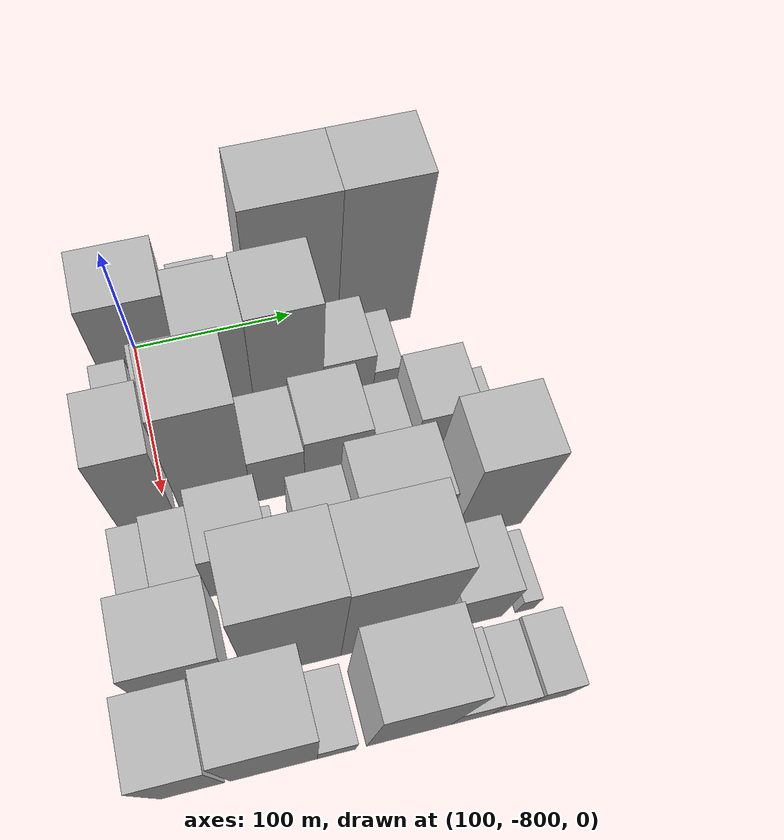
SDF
<sdf version="1.6">
 <world name="default">
  <model name="building_1">
   <static>1</static>
   <pose>100.0000 -797.8358 0 0.000000 0.000000 0.000000</pose>
   <link name="link">
    <pose>0 0 40.50 0 0 0</pose>
    <collision name="collision"><geometry><box><size>40.0000 48.3283 81.0000</size></box></geometry></collision>
    <visual name="visual">
     <cast_shadows>0</cast_shadows>
     <geometry><box><size>40.0000 48.3283 81.0000</size></box></geometry>
     <material>
      <script>
       <uri>model://HANNAS_wall/materials/scripts</uri>
       <uri>model://HANNAS_wall/materials/textures</uri>
       <name>vrc/HANNAS_wall</name>
      </script>
     </material>
    </visual>
   </link>
  </model>
  <model name="building_2">
   <static>1</static>
   <pose>100.0000 -755.2595 0 0.000000 0.000000 0.000000</pose>
   <link name="link">
    <pose>0 0 25.50 0 0 0</pose>
    <collision name="collision"><geometry><box><size>40.0000 28.8243 51.0000</size></box></geometry></collision>
    <visual name="visual">
     <cast_shadows>0</cast_shadows>
     <geometry><box><size>40.0000 28.8243 51.0000</size></box></geometry>
     <material>
      <script>
       <uri>model://HANNAS_wall/materials/scripts</uri>
       <uri>model://HANNAS_wall/materials/textures</uri>
       <name>vrc/HANNAS_wall</name>
      </script>
     </material>
    </visual>
   </link>
  </model>
  <model name="building_3">
   <static>1</static>
   <pose>100.0000 -734.4931 0 0.000000 0.000000 0.000000</pose>
   <link name="link">
    <pose>0 0 13.50 0 0 0</pose>
    <collision name="collision"><geometry><box><size>40.0000 12.7086 27.0000</size></box></geometry></collision>
    <visual name="visual">
     <cast_shadows>0</cast_shadows>
     <geometry><box><size>40.0000 12.7086 27.0000</size></box></geometry>
     <material>
      <script>
       <uri>model://HANNAS_wall/materials/scripts</uri>
       <uri>model://HANNAS_wall/materials/textures</uri>
       <name>vrc/HANNAS_wall</name>
      </script>
     </material>
    </visual>
   </link>
  </model>
  <model name="building_4">
   <static>1</static>
   <pose>100.0000 -700.9512 0 0.000000 0.000000 0.000000</pose>
   <link name="link">
    <pose>0 0 69.00 0 0 0</pose>
    <collision name="collision"><geometry><box><size>40.0000 54.3752 138.0000</size></box></geometry></collision>
    <visual name="visual">
     <cast_shadows>0</cast_shadows>
     <geometry><box><size>40.0000 54.3752 138.0000</size></box></geometry>
     <material>
      <script>
       <uri>model://HANNAS_wall/materials/scripts</uri>
       <uri>model://HANNAS_wall/materials/textures</uri>
       <name>vrc/HANNAS_wall</name>
      </script>
     </material>
    </visual>
   </link>
  </model>
  <model name="building_5">
   <static>1</static>
   <pose>100.0000 -649.9004 0 0.000000 0.000000 0.000000</pose>
   <link name="link">
    <pose>0 0 69.00 0 0 0</pose>
    <collision name="collision"><geometry><box><size>40.0000 47.7264 138.0000</size></box></geometry></collision>
    <visual name="visual">
     <cast_shadows>0</cast_shadows>
     <geometry><box><size>40.0000 47.7264 138.0000</size></box></geometry>
     <material>
      <script>
       <uri>model://HANNAS_wall/materials/scripts</uri>
       <uri>model://HANNAS_wall/materials/textures</uri>
       <name>vrc/HANNAS_wall</name>
      </script>
     </material>
    </visual>
   </link>
  </model>
  <model name="building_44">
   <static>1</static>
   <pose>149.0000 -814.3476 0 0.000000 0.000000 0.000000</pose>
   <link name="link">
    <pose>0 0 19.50 0 0 0</pose>
    <collision name="collision"><geometry><box><size>40.0000 21.3049 39.0000</size></box></geometry></collision>
    <visual name="visual">
     <cast_shadows>0</cast_shadows>
     <geometry><box><size>40.0000 21.3049 39.0000</size></box></geometry>
     <material>
      <script>
       <uri>model://HANNAS_wall/materials/scripts</uri>
       <uri>model://HANNAS_wall/materials/textures</uri>
       <name>vrc/HANNAS_wall</name>
      </script>
     </material>
    </visual>
   </link>
  </model>
  <model name="building_45">
   <static>1</static>
   <pose>149.0000 -786.1630 0 0.000000 0.000000 0.000000</pose>
   <link name="link">
    <pose>0 0 27.00 0 0 0</pose>
    <collision name="collision"><geometry><box><size>40.0000 29.0642 54.0000</size></box></geometry></collision>
    <visual name="visual">
     <cast_shadows>0</cast_shadows>
     <geometry><box><size>40.0000 29.0642 54.0000</size></box></geometry>
     <material>
      <script>
       <uri>model://HANNAS_wall/materials/scripts</uri>
       <uri>model://HANNAS_wall/materials/textures</uri>
       <name>vrc/HANNAS_wall</name>
      </script>
     </material>
    </visual>
   </link>
  </model>
  <model name="building_46">
   <static>1</static>
   <pose>149.0000 -753.9838 0 0.000000 0.000000 0.000000</pose>
   <link name="link">
    <pose>0 0 58.50 0 0 0</pose>
    <collision name="collision"><geometry><box><size>40.0000 35.2943 117.0000</size></box></geometry></collision>
    <visual name="visual">
     <cast_shadows>0</cast_shadows>
     <geometry><box><size>40.0000 35.2943 117.0000</size></box></geometry>
     <material>
      <script>
       <uri>model://HANNAS_wall/materials/scripts</uri>
       <uri>model://HANNAS_wall/materials/textures</uri>
       <name>vrc/HANNAS_wall</name>
      </script>
     </material>
    </visual>
   </link>
  </model>
  <model name="building_47">
   <static>1</static>
   <pose>149.0000 -715.8623 0 0.000000 0.000000 0.000000</pose>
   <link name="link">
    <pose>0 0 60.00 0 0 0</pose>
    <collision name="collision"><geometry><box><size>40.0000 40.9487 120.0000</size></box></geometry></collision>
    <visual name="visual">
     <cast_shadows>0</cast_shadows>
     <geometry><box><size>40.0000 40.9487 120.0000</size></box></geometry>
     <material>
      <script>
       <uri>model://HANNAS_wall/materials/scripts</uri>
       <uri>model://HANNAS_wall/materials/textures</uri>
       <name>vrc/HANNAS_wall</name>
      </script>
     </material>
    </visual>
   </link>
  </model>
  <model name="building_48">
   <static>1</static>
   <pose>149.0000 -679.9617 0 0.000000 0.000000 0.000000</pose>
   <link name="link">
    <pose>0 0 27.00 0 0 0</pose>
    <collision name="collision"><geometry><box><size>40.0000 30.8525 54.0000</size></box></geometry></collision>
    <visual name="visual">
     <cast_shadows>0</cast_shadows>
     <geometry><box><size>40.0000 30.8525 54.0000</size></box></geometry>
     <material>
      <script>
       <uri>model://HANNAS_wall/materials/scripts</uri>
       <uri>model://HANNAS_wall/materials/textures</uri>
       <name>vrc/HANNAS_wall</name>
      </script>
     </material>
    </visual>
   </link>
  </model>
  <model name="building_49">
   <static>1</static>
   <pose>149.0000 -655.8019 0 0.000000 0.000000 0.000000</pose>
   <link name="link">
    <pose>0 0 16.50 0 0 0</pose>
    <collision name="collision"><geometry><box><size>40.0000 17.4672 33.0000</size></box></geometry></collision>
    <visual name="visual">
     <cast_shadows>0</cast_shadows>
     <geometry><box><size>40.0000 17.4672 33.0000</size></box></geometry>
     <material>
      <script>
       <uri>model://HANNAS_wall/materials/scripts</uri>
       <uri>model://HANNAS_wall/materials/textures</uri>
       <name>vrc/HANNAS_wall</name>
      </script>
     </material>
    </visual>
   </link>
  </model>
  <model name="building_90">
   <static>1</static>
   <pose>198.0000 -810.6737 0 0.000000 0.000000 0.000000</pose>
   <link name="link">
    <pose>0 0 51.00 0 0 0</pose>
    <collision name="collision"><geometry><box><size>40.0000 32.6526 102.0000</size></box></geometry></collision>
    <visual name="visual">
     <cast_shadows>0</cast_shadows>
     <geometry><box><size>40.0000 32.6526 102.0000</size></box></geometry>
     <material>
      <script>
       <uri>model://HANNAS_wall/materials/scripts</uri>
       <uri>model://HANNAS_wall/materials/textures</uri>
       <name>vrc/HANNAS_wall</name>
      </script>
     </material>
    </visual>
   </link>
  </model>
  <model name="building_91">
   <static>1</static>
   <pose>198.0000 -769.9344 0 0.000000 0.000000 0.000000</pose>
   <link name="link">
    <pose>0 0 67.50 0 0 0</pose>
    <collision name="collision"><geometry><box><size>40.0000 40.8260 135.0000</size></box></geometry></collision>
    <visual name="visual">
     <cast_shadows>0</cast_shadows>
     <geometry><box><size>40.0000 40.8260 135.0000</size></box></geometry>
     <material>
      <script>
       <uri>model://HANNAS_wall/materials/scripts</uri>
       <uri>model://HANNAS_wall/materials/textures</uri>
       <name>vrc/HANNAS_wall</name>
      </script>
     </material>
    </visual>
   </link>
  </model>
  <model name="building_92">
   <static>1</static>
   <pose>198.0000 -733.8864 0 0.000000 0.000000 0.000000</pose>
   <link name="link">
    <pose>0 0 30.00 0 0 0</pose>
    <collision name="collision"><geometry><box><size>40.0000 31.2701 60.0000</size></box></geometry></collision>
    <visual name="visual">
     <cast_shadows>0</cast_shadows>
     <geometry><box><size>40.0000 31.2701 60.0000</size></box></geometry>
     <material>
      <script>
       <uri>model://HANNAS_wall/materials/scripts</uri>
       <uri>model://HANNAS_wall/materials/textures</uri>
       <name>vrc/HANNAS_wall</name>
      </script>
     </material>
    </visual>
   </link>
  </model>
  <model name="building_93">
   <static>1</static>
   <pose>198.0000 -699.2500 0 0.000000 0.000000 0.000000</pose>
   <link name="link">
    <pose>0 0 34.50 0 0 0</pose>
    <collision name="collision"><geometry><box><size>40.0000 38.0027 69.0000</size></box></geometry></collision>
    <visual name="visual">
     <cast_shadows>0</cast_shadows>
     <geometry><box><size>40.0000 38.0027 69.0000</size></box></geometry>
     <material>
      <script>
       <uri>model://HANNAS_wall/materials/scripts</uri>
       <uri>model://HANNAS_wall/materials/textures</uri>
       <name>vrc/HANNAS_wall</name>
      </script>
     </material>
    </visual>
   </link>
  </model>
  <model name="building_94">
   <static>1</static>
   <pose>198.0000 -664.7295 0 0.000000 0.000000 0.000000</pose>
   <link name="link">
    <pose>0 0 19.50 0 0 0</pose>
    <collision name="collision"><geometry><box><size>40.0000 21.0384 39.0000</size></box></geometry></collision>
    <visual name="visual">
     <cast_shadows>0</cast_shadows>
     <geometry><box><size>40.0000 21.0384 39.0000</size></box></geometry>
     <material>
      <script>
       <uri>model://HANNAS_wall/materials/scripts</uri>
       <uri>model://HANNAS_wall/materials/textures</uri>
       <name>vrc/HANNAS_wall</name>
      </script>
     </material>
    </visual>
   </link>
  </model>
  <model name="building_95">
   <static>1</static>
   <pose>198.0000 -637.0388 0 0.000000 0.000000 0.000000</pose>
   <link name="link">
    <pose>0 0 33.00 0 0 0</pose>
    <collision name="collision"><geometry><box><size>40.0000 34.3429 66.0000</size></box></geometry></collision>
    <visual name="visual">
     <cast_shadows>0</cast_shadows>
     <geometry><box><size>40.0000 34.3429 66.0000</size></box></geometry>
     <material>
      <script>
       <uri>model://HANNAS_wall/materials/scripts</uri>
       <uri>model://HANNAS_wall/materials/textures</uri>
       <name>vrc/HANNAS_wall</name>
      </script>
     </material>
    </visual>
   </link>
  </model>
  <model name="building_96">
   <static>1</static>
   <pose>198.0000 -611.3137 0 0.000000 0.000000 0.000000</pose>
   <link name="link">
    <pose>0 0 15.00 0 0 0</pose>
    <collision name="collision"><geometry><box><size>40.0000 17.1075 30.0000</size></box></geometry></collision>
    <visual name="visual">
     <cast_shadows>0</cast_shadows>
     <geometry><box><size>40.0000 17.1075 30.0000</size></box></geometry>
     <material>
      <script>
       <uri>model://HANNAS_wall/materials/scripts</uri>
       <uri>model://HANNAS_wall/materials/textures</uri>
       <name>vrc/HANNAS_wall</name>
      </script>
     </material>
    </visual>
   </link>
  </model>
  <model name="building_140">
   <static>1</static>
   <pose>247.0000 -820.7951 0 0.000000 0.000000 0.000000</pose>
   <link name="link">
    <pose>0 0 18.00 0 0 0</pose>
    <collision name="collision"><geometry><box><size>40.0000 18.4097 36.0000</size></box></geometry></collision>
    <visual name="visual">
     <cast_shadows>0</cast_shadows>
     <geometry><box><size>40.0000 18.4097 36.0000</size></box></geometry>
     <material>
      <script>
       <uri>model://HANNAS_wall/materials/scripts</uri>
       <uri>model://HANNAS_wall/materials/textures</uri>
       <name>vrc/HANNAS_wall</name>
      </script>
     </material>
    </visual>
   </link>
  </model>
  <model name="building_141">
   <static>1</static>
   <pose>247.0000 -798.0958 0 0.000000 0.000000 0.000000</pose>
   <link name="link">
    <pose>0 0 22.50 0 0 0</pose>
    <collision name="collision"><geometry><box><size>40.0000 26.9890 45.0000</size></box></geometry></collision>
    <visual name="visual">
     <cast_shadows>0</cast_shadows>
     <geometry><box><size>40.0000 26.9890 45.0000</size></box></geometry>
     <material>
      <script>
       <uri>model://HANNAS_wall/materials/scripts</uri>
       <uri>model://HANNAS_wall/materials/textures</uri>
       <name>vrc/HANNAS_wall</name>
      </script>
     </material>
    </visual>
   </link>
  </model>
  <model name="building_142">
   <static>1</static>
   <pose>247.0000 -766.0405 0 0.000000 0.000000 0.000000</pose>
   <link name="link">
    <pose>0 0 34.50 0 0 0</pose>
    <collision name="collision"><geometry><box><size>40.0000 37.1214 69.0000</size></box></geometry></collision>
    <visual name="visual">
     <cast_shadows>0</cast_shadows>
     <geometry><box><size>40.0000 37.1214 69.0000</size></box></geometry>
     <material>
      <script>
       <uri>model://HANNAS_wall/materials/scripts</uri>
       <uri>model://HANNAS_wall/materials/textures</uri>
       <name>vrc/HANNAS_wall</name>
      </script>
     </material>
    </visual>
   </link>
  </model>
  <model name="building_143">
   <static>1</static>
   <pose>247.0000 -744.4056 0 0.000000 0.000000 0.000000</pose>
   <link name="link">
    <pose>0 0 7.50 0 0 0</pose>
    <collision name="collision"><geometry><box><size>40.0000 6.1484 15.0000</size></box></geometry></collision>
    <visual name="visual">
     <cast_shadows>0</cast_shadows>
     <geometry><box><size>40.0000 6.1484 15.0000</size></box></geometry>
     <material>
      <script>
       <uri>model://HANNAS_wall/materials/scripts</uri>
       <uri>model://HANNAS_wall/materials/textures</uri>
       <name>vrc/HANNAS_wall</name>
      </script>
     </material>
    </visual>
   </link>
  </model>
  <model name="building_144">
   <static>1</static>
   <pose>247.0000 -715.7449 0 0.000000 0.000000 0.000000</pose>
   <link name="link">
    <pose>0 0 27.00 0 0 0</pose>
    <collision name="collision"><geometry><box><size>40.0000 31.1729 54.0000</size></box></geometry></collision>
    <visual name="visual">
     <cast_shadows>0</cast_shadows>
     <geometry><box><size>40.0000 31.1729 54.0000</size></box></geometry>
     <material>
      <script>
       <uri>model://HANNAS_wall/materials/scripts</uri>
       <uri>model://HANNAS_wall/materials/textures</uri>
       <name>vrc/HANNAS_wall</name>
      </script>
     </material>
    </visual>
   </link>
  </model>
  <model name="building_145">
   <static>1</static>
   <pose>247.0000 -675.9454 0 0.000000 0.000000 0.000000</pose>
   <link name="link">
    <pose>0 0 42.00 0 0 0</pose>
    <collision name="collision"><geometry><box><size>40.0000 48.4261 84.0000</size></box></geometry></collision>
    <visual name="visual">
     <cast_shadows>0</cast_shadows>
     <geometry><box><size>40.0000 48.4261 84.0000</size></box></geometry>
     <material>
      <script>
       <uri>model://HANNAS_wall/materials/scripts</uri>
       <uri>model://HANNAS_wall/materials/textures</uri>
       <name>vrc/HANNAS_wall</name>
      </script>
     </material>
    </visual>
   </link>
  </model>
  <model name="building_146">
   <static>1</static>
   <pose>247.0000 -622.5929 0 0.000000 0.000000 0.000000</pose>
   <link name="link">
    <pose>0 0 54.00 0 0 0</pose>
    <collision name="collision"><geometry><box><size>40.0000 42.2787 108.0000</size></box></geometry></collision>
    <visual name="visual">
     <cast_shadows>0</cast_shadows>
     <geometry><box><size>40.0000 42.2787 108.0000</size></box></geometry>
     <material>
      <script>
       <uri>model://HANNAS_wall/materials/scripts</uri>
       <uri>model://HANNAS_wall/materials/textures</uri>
       <name>vrc/HANNAS_wall</name>
      </script>
     </material>
    </visual>
   </link>
  </model>
  <model name="building_192">
   <static>1</static>
   <pose>296.0000 -806.2246 0 0.000000 0.000000 0.000000</pose>
   <link name="link">
    <pose>0 0 40.50 0 0 0</pose>
    <collision name="collision"><geometry><box><size>40.0000 47.5508 81.0000</size></box></geometry></collision>
    <visual name="visual">
     <cast_shadows>0</cast_shadows>
     <geometry><box><size>40.0000 47.5508 81.0000</size></box></geometry>
     <material>
      <script>
       <uri>model://HANNAS_wall/materials/scripts</uri>
       <uri>model://HANNAS_wall/materials/textures</uri>
       <name>vrc/HANNAS_wall</name>
      </script>
     </material>
    </visual>
   </link>
  </model>
  <model name="building_193">
   <static>1</static>
   <pose>296.0000 -747.5512 0 0.000000 0.000000 0.000000</pose>
   <link name="link">
    <pose>0 0 72.00 0 0 0</pose>
    <collision name="collision"><geometry><box><size>40.0000 51.7960 144.0000</size></box></geometry></collision>
    <visual name="visual">
     <cast_shadows>0</cast_shadows>
     <geometry><box><size>40.0000 51.7960 144.0000</size></box></geometry>
     <material>
      <script>
       <uri>model://HANNAS_wall/materials/scripts</uri>
       <uri>model://HANNAS_wall/materials/textures</uri>
       <name>vrc/HANNAS_wall</name>
      </script>
     </material>
    </visual>
   </link>
  </model>
  <model name="building_194">
   <static>1</static>
   <pose>296.0000 -694.8485 0 0.000000 0.000000 0.000000</pose>
   <link name="link">
    <pose>0 0 70.50 0 0 0</pose>
    <collision name="collision"><geometry><box><size>40.0000 53.6096 141.0000</size></box></geometry></collision>
    <visual name="visual">
     <cast_shadows>0</cast_shadows>
     <geometry><box><size>40.0000 53.6096 141.0000</size></box></geometry>
     <material>
      <script>
       <uri>model://HANNAS_wall/materials/scripts</uri>
       <uri>model://HANNAS_wall/materials/textures</uri>
       <name>vrc/HANNAS_wall</name>
      </script>
     </material>
    </visual>
   </link>
  </model>
  <model name="building_195">
   <static>1</static>
   <pose>296.0000 -645.6796 0 0.000000 0.000000 0.000000</pose>
   <link name="link">
    <pose>0 0 31.50 0 0 0</pose>
    <collision name="collision"><geometry><box><size>40.0000 32.7281 63.0000</size></box></geometry></collision>
    <visual name="visual">
     <cast_shadows>0</cast_shadows>
     <geometry><box><size>40.0000 32.7281 63.0000</size></box></geometry>
     <material>
      <script>
       <uri>model://HANNAS_wall/materials/scripts</uri>
       <uri>model://HANNAS_wall/materials/textures</uri>
       <name>vrc/HANNAS_wall</name>
      </script>
     </material>
    </visual>
   </link>
  </model>
  <model name="building_196">
   <static>1</static>
   <pose>296.0000 -615.9681 0 0.000000 0.000000 0.000000</pose>
   <link name="link">
    <pose>0 0 12.00 0 0 0</pose>
    <collision name="collision"><geometry><box><size>40.0000 10.6949 24.0000</size></box></geometry></collision>
    <visual name="visual">
     <cast_shadows>0</cast_shadows>
     <geometry><box><size>40.0000 10.6949 24.0000</size></box></geometry>
     <material>
      <script>
       <uri>model://HANNAS_wall/materials/scripts</uri>
       <uri>model://HANNAS_wall/materials/textures</uri>
       <name>vrc/HANNAS_wall</name>
      </script>
     </material>
    </visual>
   </link>
  </model>
  <model name="building_234">
   <static>1</static>
   <pose>345.0000 -813.1342 0 0.000000 0.000000 0.000000</pose>
   <link name="link">
    <pose>0 0 51.00 0 0 0</pose>
    <collision name="collision"><geometry><box><size>40.0000 33.7317 102.0000</size></box></geometry></collision>
    <visual name="visual">
     <cast_shadows>0</cast_shadows>
     <geometry><box><size>40.0000 33.7317 102.0000</size></box></geometry>
     <material>
      <script>
       <uri>model://HANNAS_wall/materials/scripts</uri>
       <uri>model://HANNAS_wall/materials/textures</uri>
       <name>vrc/HANNAS_wall</name>
      </script>
     </material>
    </visual>
   </link>
  </model>
  <model name="building_235">
   <static>1</static>
   <pose>345.0000 -770.0024 0 0.000000 0.000000 0.000000</pose>
   <link name="link">
    <pose>0 0 61.50 0 0 0</pose>
    <collision name="collision"><geometry><box><size>40.0000 46.5319 123.0000</size></box></geometry></collision>
    <visual name="visual">
     <cast_shadows>0</cast_shadows>
     <geometry><box><size>40.0000 46.5319 123.0000</size></box></geometry>
     <material>
      <script>
       <uri>model://HANNAS_wall/materials/scripts</uri>
       <uri>model://HANNAS_wall/materials/textures</uri>
       <name>vrc/HANNAS_wall</name>
      </script>
     </material>
    </visual>
   </link>
  </model>
  <model name="building_236">
   <static>1</static>
   <pose>345.0000 -736.4166 0 0.000000 0.000000 0.000000</pose>
   <link name="link">
    <pose>0 0 18.00 0 0 0</pose>
    <collision name="collision"><geometry><box><size>40.0000 20.6397 36.0000</size></box></geometry></collision>
    <visual name="visual">
     <cast_shadows>0</cast_shadows>
     <geometry><box><size>40.0000 20.6397 36.0000</size></box></geometry>
     <material>
      <script>
       <uri>model://HANNAS_wall/materials/scripts</uri>
       <uri>model://HANNAS_wall/materials/textures</uri>
       <name>vrc/HANNAS_wall</name>
      </script>
     </material>
    </visual>
   </link>
  </model>
  <model name="building_237">
   <static>1</static>
   <pose>345.0000 -696.9354 0 0.000000 0.000000 0.000000</pose>
   <link name="link">
    <pose>0 0 61.50 0 0 0</pose>
    <collision name="collision"><geometry><box><size>40.0000 46.3228 123.0000</size></box></geometry></collision>
    <visual name="visual">
     <cast_shadows>0</cast_shadows>
     <geometry><box><size>40.0000 46.3228 123.0000</size></box></geometry>
     <material>
      <script>
       <uri>model://HANNAS_wall/materials/scripts</uri>
       <uri>model://HANNAS_wall/materials/textures</uri>
       <name>vrc/HANNAS_wall</name>
      </script>
     </material>
    </visual>
   </link>
  </model>
  <model name="building_238">
   <static>1</static>
   <pose>345.0000 -662.4675 0 0.000000 0.000000 0.000000</pose>
   <link name="link">
    <pose>0 0 21.00 0 0 0</pose>
    <collision name="collision"><geometry><box><size>40.0000 22.6129 42.0000</size></box></geometry></collision>
    <visual name="visual">
     <cast_shadows>0</cast_shadows>
     <geometry><box><size>40.0000 22.6129 42.0000</size></box></geometry>
     <material>
      <script>
       <uri>model://HANNAS_wall/materials/scripts</uri>
       <uri>model://HANNAS_wall/materials/textures</uri>
       <name>vrc/HANNAS_wall</name>
      </script>
     </material>
    </visual>
   </link>
  </model>
  <model name="building_239">
   <static>1</static>
   <pose>345.0000 -640.7263 0 0.000000 0.000000 0.000000</pose>
   <link name="link">
    <pose>0 0 18.00 0 0 0</pose>
    <collision name="collision"><geometry><box><size>40.0000 20.8695 36.0000</size></box></geometry></collision>
    <visual name="visual">
     <cast_shadows>0</cast_shadows>
     <geometry><box><size>40.0000 20.8695 36.0000</size></box></geometry>
     <material>
      <script>
       <uri>model://HANNAS_wall/materials/scripts</uri>
       <uri>model://HANNAS_wall/materials/textures</uri>
       <name>vrc/HANNAS_wall</name>
      </script>
     </material>
    </visual>
   </link>
  </model>
  <model name="building_240">
   <static>1</static>
   <pose>345.0000 -619.3502 0 0.000000 0.000000 0.000000</pose>
   <link name="link">
    <pose>0 0 21.00 0 0 0</pose>
    <collision name="collision"><geometry><box><size>40.0000 21.8827 42.0000</size></box></geometry></collision>
    <visual name="visual">
     <cast_shadows>0</cast_shadows>
     <geometry><box><size>40.0000 21.8827 42.0000</size></box></geometry>
     <material>
      <script>
       <uri>model://HANNAS_wall/materials/scripts</uri>
       <uri>model://HANNAS_wall/materials/textures</uri>
       <name>vrc/HANNAS_wall</name>
      </script>
     </material>
    </visual>
   </link>
  </model>
 </world>
</sdf>
